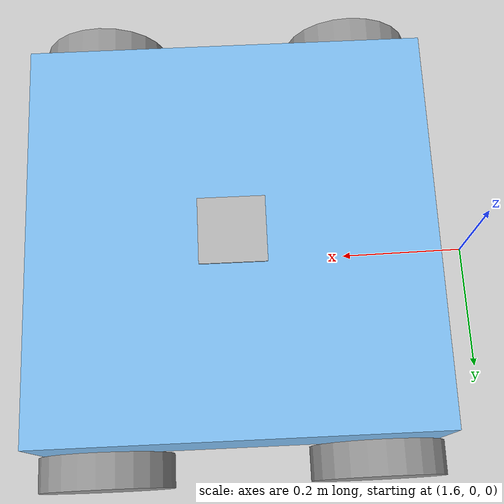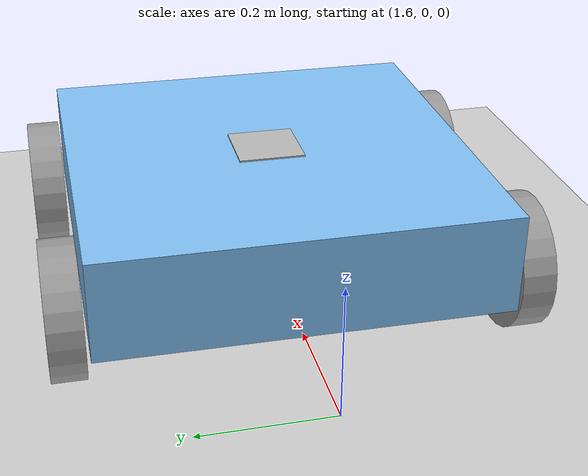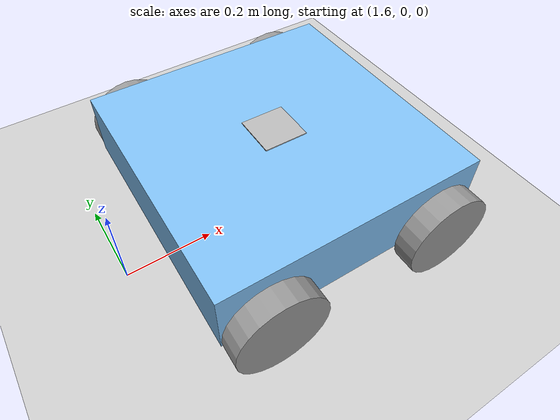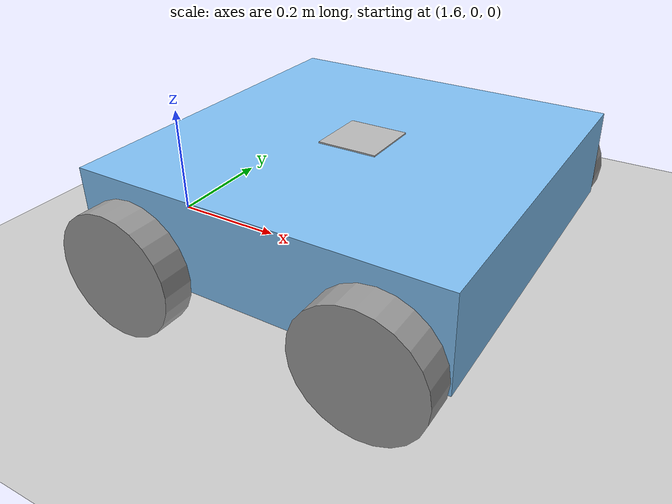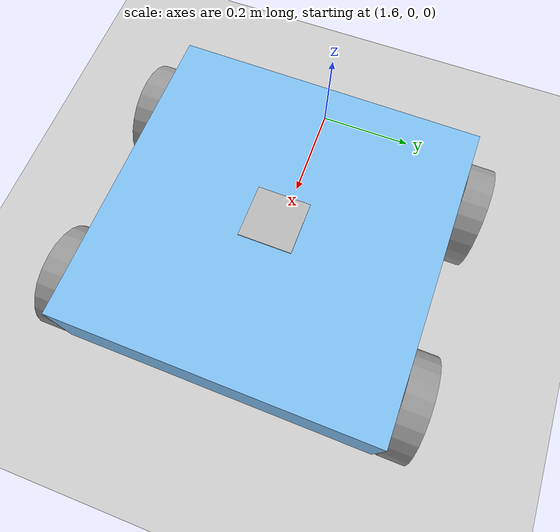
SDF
<sdf version="1.6">
 <world name="default">
  <light name="sun" type="directional">
   <pose>0 0 10 0 -0 0</pose>
   <diffuse>0.8 0.8 0.8 1</diffuse>
   <specular>0.2 0.2 0.2 1</specular>
   <attenuation>
    <range>1000</range>
    <constant>0.9</constant>
    <linear>0.01</linear>
    <quadratic>0.001</quadratic>
   </attenuation>
   <direction>-0.5 0.1 -0.9</direction>
  </light>
  <model name="ground_plane">
   <static>1</static>
   <link name="link">
    <collision name="collision">
     <geometry><plane><normal>0 0 1</normal><size>100 100</size></plane></geometry>
     <surface>
      <contact><collide_bitmask>65535</collide_bitmask></contact>
      <friction><ode><mu>100</mu><mu2>50</mu2></ode></friction>
     </surface>
    </collision>
    <visual name="visual">
     <cast_shadows>0</cast_shadows>
     <geometry><plane><normal>0 0 1</normal><size>100 100</size></plane></geometry>
     <material>
      <script><uri>file://media/materials/scripts/gazebo.material</uri><name>Gazebo/Grey</name></script>
     </material>
    </visual>
   </link>
  </model>
  <gravity>0 0 -9.8</gravity>
  <magnetic_field>6e-06 2.3e-05 -4.2e-05</magnetic_field>
  <atmosphere type="adiabatic"/>
  <physics name="default_physics" default="0" type="ode">
   <max_step_size>0.001</max_step_size>
   <real_time_factor>1</real_time_factor>
   <real_time_update_rate>1000</real_time_update_rate>
  </physics>
  <scene><ambient>0.4 0.4 0.4 1</ambient><background>0.7 0.7 0.7 1</background><shadows>1</shadows></scene>
  <spherical_coordinates>
   <surface_model>EARTH_WGS84</surface_model>
   <latitude_deg>0</latitude_deg>
   <longitude_deg>0</longitude_deg>
   <elevation>0</elevation>
   <heading_deg>0</heading_deg>
  </spherical_coordinates>
  <model name="moving_platform">
   <link name="base_link">
    <inertial>
     <mass>5</mass>
     <inertia><ixx>0.159375</ixx><ixy>0</ixy><ixz>0</ixz><iyy>0.159375</iyy><iyz>0</iyz><izz>0.3</izz></inertia>
    </inertial>
    <pose>-0.06079 0.110542 0.097222 0 -0 0</pose>
    <visual name="visual">
     <geometry><box><size>0.6 0.6 0.15</size></box></geometry>
     <material>
      <lighting>1</lighting>
      <script><uri>file://media/materials/scripts/gazebo.material</uri><name>Gazebo/SkyBlue</name></script>
      <shader type="pixel"><normal_map>__default__</normal_map></shader>
      <ambient>0.3 0.3 0.3 1</ambient>
      <diffuse>0.7 0.7 0.7 1</diffuse>
      <specular>0.01 0.01 0.01 1</specular>
      <emissive>0 0 0 1</emissive>
     </material>
    </visual>
    <collision name="collision">
     <geometry><box><size>0.6 0.6 0.15</size></box></geometry>
     <surface>
      <friction>
       <ode><mu>1</mu><mu2>1</mu2><fdir1>0 0 0</fdir1><slip1>0</slip1><slip2>0</slip2></ode>
       <torsional>
        <coefficient>1</coefficient>
        <patch_radius>0</patch_radius>
        <surface_radius>0</surface_radius>
        <use_patch_radius>1</use_patch_radius>
        <ode><slip>0</slip></ode>
       </torsional>
      </friction>
      <bounce><restitution_coefficient>0</restitution_coefficient><threshold>1e+06</threshold></bounce>
      <contact>
       <collide_without_contact>0</collide_without_contact>
       <collide_without_contact_bitmask>1</collide_without_contact_bitmask>
       <collide_bitmask>1</collide_bitmask>
       <ode>
        <soft_cfm>0</soft_cfm>
        <soft_erp>0.2</soft_erp>
        <kp>1e+13</kp>
        <kd>1</kd>
        <max_vel>0.01</max_vel>
        <min_depth>0</min_depth>
       </ode>
       <bullet>
        <split_impulse>1</split_impulse>
        <split_impulse_penetration_threshold>-0.01</split_impulse_penetration_threshold>
        <soft_cfm>0</soft_cfm>
        <soft_erp>0.2</soft_erp>
        <kp>1e+13</kp>
        <kd>1</kd>
       </bullet>
      </contact>
     </surface>
    </collision>
   </link>
   <link name="left_front_wheel">
    <inertial>
     <mass>0.15</mass>
     <inertia>
      <ixx>0.00040625</ixx>
      <ixy>0</ixy>
      <ixz>0</ixz>
      <iyy>0.00040625</iyy>
      <iyz>0</iyz>
      <izz>0.00075</izz>
     </inertia>
    </inertial>
    <pose>0.13921 0.440542 0.047222 -1.5708 -0 -0</pose>
    <visual name="visual">
     <geometry><cylinder><radius>0.1</radius><length>0.05</length></cylinder></geometry>
     <material>
      <lighting>1</lighting>
      <script><uri>file://media/materials/scripts/gazebo.material</uri><name>Gazebo/Grey</name></script>
      <shader type="pixel"><normal_map>__default__</normal_map></shader>
      <ambient>0.3 0.3 0.3 1</ambient>
      <diffuse>0.7 0.7 0.7 1</diffuse>
      <specular>0.01 0.01 0.01 1</specular>
      <emissive>0 0 0 1</emissive>
     </material>
    </visual>
    <collision name="collision">
     <geometry><cylinder><radius>0.1</radius><length>0.05</length></cylinder></geometry>
     <surface>
      <friction>
       <ode><mu>1</mu><mu2>1</mu2><fdir1>0 0 0</fdir1><slip1>0</slip1><slip2>0</slip2></ode>
       <torsional>
        <coefficient>1</coefficient>
        <patch_radius>0</patch_radius>
        <surface_radius>0</surface_radius>
        <use_patch_radius>1</use_patch_radius>
        <ode><slip>0</slip></ode>
       </torsional>
      </friction>
      <bounce><restitution_coefficient>0</restitution_coefficient><threshold>1e+06</threshold></bounce>
      <contact>
       <collide_without_contact>0</collide_without_contact>
       <collide_without_contact_bitmask>1</collide_without_contact_bitmask>
       <collide_bitmask>1</collide_bitmask>
       <ode>
        <soft_cfm>0</soft_cfm>
        <soft_erp>0.2</soft_erp>
        <kp>1e+13</kp>
        <kd>1</kd>
        <max_vel>0.01</max_vel>
        <min_depth>0</min_depth>
       </ode>
       <bullet>
        <split_impulse>1</split_impulse>
        <split_impulse_penetration_threshold>-0.01</split_impulse_penetration_threshold>
        <soft_cfm>0</soft_cfm>
        <soft_erp>0.2</soft_erp>
        <kp>1e+13</kp>
        <kd>1</kd>
       </bullet>
      </contact>
     </surface>
    </collision>
   </link>
   <link name="left_rear_wheel">
    <inertial>
     <mass>0.15</mass>
     <inertia>
      <ixx>0.00040625</ixx>
      <ixy>0</ixy>
      <ixz>0</ixz>
      <iyy>0.00040625</iyy>
      <iyz>0</iyz>
      <izz>0.00075</izz>
     </inertia>
    </inertial>
    <pose>-0.26079 0.440542 0.047222 -1.5708 -0 -0</pose>
    <visual name="visual">
     <geometry><cylinder><radius>0.1</radius><length>0.05</length></cylinder></geometry>
     <material>
      <lighting>1</lighting>
      <script><uri>file://media/materials/scripts/gazebo.material</uri><name>Gazebo/Grey</name></script>
      <shader type="pixel"><normal_map>__default__</normal_map></shader>
      <ambient>0.3 0.3 0.3 1</ambient>
      <diffuse>0.7 0.7 0.7 1</diffuse>
      <specular>0.01 0.01 0.01 1</specular>
      <emissive>0 0 0 1</emissive>
     </material>
    </visual>
    <collision name="collision">
     <geometry><cylinder><radius>0.1</radius><length>0.05</length></cylinder></geometry>
     <surface>
      <friction>
       <ode><mu>1</mu><mu2>1</mu2><fdir1>0 0 0</fdir1><slip1>0</slip1><slip2>0</slip2></ode>
       <torsional>
        <coefficient>1</coefficient>
        <patch_radius>0</patch_radius>
        <surface_radius>0</surface_radius>
        <use_patch_radius>1</use_patch_radius>
        <ode><slip>0</slip></ode>
       </torsional>
      </friction>
      <bounce><restitution_coefficient>0</restitution_coefficient><threshold>1e+06</threshold></bounce>
      <contact>
       <collide_without_contact>0</collide_without_contact>
       <collide_without_contact_bitmask>1</collide_without_contact_bitmask>
       <collide_bitmask>1</collide_bitmask>
       <ode>
        <soft_cfm>0</soft_cfm>
        <soft_erp>0.2</soft_erp>
        <kp>1e+13</kp>
        <kd>1</kd>
        <max_vel>0.01</max_vel>
        <min_depth>0</min_depth>
       </ode>
       <bullet>
        <split_impulse>1</split_impulse>
        <split_impulse_penetration_threshold>-0.01</split_impulse_penetration_threshold>
        <soft_cfm>0</soft_cfm>
        <soft_erp>0.2</soft_erp>
        <kp>1e+13</kp>
        <kd>1</kd>
       </bullet>
      </contact>
     </surface>
    </collision>
   </link>
   <link name="right_front_wheel">
    <inertial>
     <mass>0.15</mass>
     <inertia>
      <ixx>0.00040625</ixx>
      <ixy>0</ixy>
      <ixz>0</ixz>
      <iyy>0.00040625</iyy>
      <iyz>0</iyz>
      <izz>0.00075</izz>
     </inertia>
    </inertial>
    <pose>0.13921 -0.219458 0.047222 -1.5708 -0.000987 -0</pose>
    <visual name="visual">
     <geometry><cylinder><radius>0.1</radius><length>0.05</length></cylinder></geometry>
     <material>
      <lighting>1</lighting>
      <script><uri>file://media/materials/scripts/gazebo.material</uri><name>Gazebo/Grey</name></script>
      <shader type="pixel"><normal_map>__default__</normal_map></shader>
      <ambient>0.3 0.3 0.3 1</ambient>
      <diffuse>0.7 0.7 0.7 1</diffuse>
      <specular>0.01 0.01 0.01 1</specular>
      <emissive>0 0 0 1</emissive>
     </material>
    </visual>
    <collision name="collision">
     <geometry><cylinder><radius>0.1</radius><length>0.05</length></cylinder></geometry>
     <surface>
      <friction>
       <ode><mu>1</mu><mu2>1</mu2><fdir1>0 0 0</fdir1><slip1>0</slip1><slip2>0</slip2></ode>
       <torsional>
        <coefficient>1</coefficient>
        <patch_radius>0</patch_radius>
        <surface_radius>0</surface_radius>
        <use_patch_radius>1</use_patch_radius>
        <ode><slip>0</slip></ode>
       </torsional>
      </friction>
      <bounce><restitution_coefficient>0</restitution_coefficient><threshold>1e+06</threshold></bounce>
      <contact>
       <collide_without_contact>0</collide_without_contact>
       <collide_without_contact_bitmask>1</collide_without_contact_bitmask>
       <collide_bitmask>1</collide_bitmask>
       <ode>
        <soft_cfm>0</soft_cfm>
        <soft_erp>0.2</soft_erp>
        <kp>1e+13</kp>
        <kd>1</kd>
        <max_vel>0.01</max_vel>
        <min_depth>0</min_depth>
       </ode>
       <bullet>
        <split_impulse>1</split_impulse>
        <split_impulse_penetration_threshold>-0.01</split_impulse_penetration_threshold>
        <soft_cfm>0</soft_cfm>
        <soft_erp>0.2</soft_erp>
        <kp>1e+13</kp>
        <kd>1</kd>
       </bullet>
      </contact>
     </surface>
    </collision>
   </link>
   <link name="right_rear_wheel">
    <inertial>
     <mass>0.15</mass>
     <inertia>
      <ixx>0.00040625</ixx>
      <ixy>0</ixy>
      <ixz>0</ixz>
      <iyy>0.00040625</iyy>
      <iyz>0</iyz>
      <izz>0.00075</izz>
     </inertia>
    </inertial>
    <pose>-0.26079 -0.219458 0.047222 -1.5708 -0 -0</pose>
    <visual name="visual">
     <geometry><cylinder><radius>0.1</radius><length>0.05</length></cylinder></geometry>
     <material>
      <lighting>1</lighting>
      <script><uri>file://media/materials/scripts/gazebo.material</uri><name>Gazebo/Grey</name></script>
      <shader type="pixel"><normal_map>__default__</normal_map></shader>
      <ambient>0.3 0.3 0.3 1</ambient>
      <diffuse>0.7 0.7 0.7 1</diffuse>
      <specular>0.01 0.01 0.01 1</specular>
      <emissive>0 0 0 1</emissive>
     </material>
    </visual>
    <collision name="collision">
     <geometry><cylinder><radius>0.1</radius><length>0.05</length></cylinder></geometry>
     <surface>
      <friction>
       <ode><mu>1</mu><mu2>1</mu2><fdir1>0 0 0</fdir1><slip1>0</slip1><slip2>0</slip2></ode>
       <torsional>
        <coefficient>1</coefficient>
        <patch_radius>0</patch_radius>
        <surface_radius>0</surface_radius>
        <use_patch_radius>1</use_patch_radius>
        <ode><slip>0</slip></ode>
       </torsional>
      </friction>
      <bounce><restitution_coefficient>0</restitution_coefficient><threshold>1e+06</threshold></bounce>
      <contact>
       <collide_without_contact>0</collide_without_contact>
       <collide_without_contact_bitmask>1</collide_without_contact_bitmask>
       <collide_bitmask>1</collide_bitmask>
       <ode>
        <soft_cfm>0</soft_cfm>
        <soft_erp>0.2</soft_erp>
        <kp>1e+13</kp>
        <kd>1</kd>
        <max_vel>0.01</max_vel>
        <min_depth>0</min_depth>
       </ode>
       <bullet>
        <split_impulse>1</split_impulse>
        <split_impulse_penetration_threshold>-0.01</split_impulse_penetration_threshold>
        <soft_cfm>0</soft_cfm>
        <soft_erp>0.2</soft_erp>
        <kp>1e+13</kp>
        <kd>1</kd>
       </bullet>
      </contact>
     </surface>
    </collision>
   </link>
   <model name="camera_0">
    <pose>-0.060656 0.110538 0.124572 8e-06 -1.56986 -8e-06</pose>
    <link name="link">
     <inertial>
      <mass>0.01</mass>
      <inertia>
       <ixx>1.66667e-05</ixx>
       <iyy>1.66667e-05</iyy>
       <izz>1.66667e-05</izz>
       <ixy>0</ixy>
       <ixz>0</ixz>
       <iyz>0</iyz>
      </inertia>
     </inertial>
     <collision name="collision"><geometry><box><size>0.1 0.1 0.1</size></box></geometry></collision>
     <visual name="visual"><geometry><box><size>0.1 0.1 0.1</size></box></geometry></visual>
     <sensor name="camera" type="camera">
      <camera name="__default__">
       <horizontal_fov>1.047</horizontal_fov>
       <image><width>640</width><height>480</height></image>
       <clip><near>0.1</near><far>100</far></clip>
      </camera>
      <always_on>1</always_on>
      <update_rate>30</update_rate>
      <visualize>1</visualize>
      <plugin name="camera_plugin" filename="libgazebo_ros_camera.so">
       <robotNamespace>/moving_platform/sensor</robotNamespace>
       <alwaysOn>1</alwaysOn>
       <imageTopicName>image_raw</imageTopicName>
       <cameraInfoTopicName>camera_info</cameraInfoTopicName>
       <updateRate>30.0</updateRate>
       <cameraName>camera_lookup</cameraName>
       <frameName>/camera_0::link</frameName>
       <hackBaseline>0</hackBaseline>
       <distortionK1>0.0</distortionK1>
       <distortionK2>0.0</distortionK2>
       <distortionK3>0.0</distortionK3>
       <distortionT1>0.0</distortionT1>
       <distortionT2>0.0</distortionT2>
      </plugin>
     </sensor>
    </link>
   </model>
   <joint name="camera_joint" type="fixed">
    <parent>base_link</parent>
    <child>camera_0::link</child>
    <physics>
     <ode><limit><cfm>0</cfm><erp>0.2</erp></limit><suspension><cfm>0</cfm><erp>0.2</erp></suspension></ode>
    </physics>
   </joint>
   <joint name="left_front_wheel_joint" type="revolute">
    <parent>base_link</parent>
    <child>left_front_wheel</child>
    <axis>
     <xyz>0 0 1</xyz>
     <use_parent_model_frame>0</use_parent_model_frame>
     <limit>
      <lower>-1.79769e+308</lower>
      <upper>1.79769e+308</upper>
      <effort>-1</effort>
      <velocity>-1</velocity>
     </limit>
     <dynamics>
      <spring_reference>0</spring_reference>
      <spring_stiffness>0</spring_stiffness>
      <damping>0</damping>
      <friction>0</friction>
     </dynamics>
    </axis>
    <physics>
     <ode><limit><cfm>0</cfm><erp>0.2</erp></limit><suspension><cfm>0</cfm><erp>0.2</erp></suspension></ode>
    </physics>
   </joint>
   <joint name="left_rear_wheel_joint" type="revolute">
    <parent>base_link</parent>
    <child>left_rear_wheel</child>
    <axis>
     <xyz>0 0 1</xyz>
     <use_parent_model_frame>0</use_parent_model_frame>
     <limit>
      <lower>-1.79769e+308</lower>
      <upper>1.79769e+308</upper>
      <effort>-1</effort>
      <velocity>-1</velocity>
     </limit>
     <dynamics>
      <spring_reference>0</spring_reference>
      <spring_stiffness>0</spring_stiffness>
      <damping>0</damping>
      <friction>0</friction>
     </dynamics>
    </axis>
    <physics>
     <ode><limit><cfm>0</cfm><erp>0.2</erp></limit><suspension><cfm>0</cfm><erp>0.2</erp></suspension></ode>
    </physics>
   </joint>
   <joint name="right_front_wheel_joint" type="revolute">
    <parent>base_link</parent>
    <child>right_front_wheel</child>
    <axis>
     <xyz>0 0 1</xyz>
     <use_parent_model_frame>0</use_parent_model_frame>
     <limit>
      <lower>-1.79769e+308</lower>
      <upper>1.79769e+308</upper>
      <effort>-1</effort>
      <velocity>-1</velocity>
     </limit>
     <dynamics>
      <spring_reference>0</spring_reference>
      <spring_stiffness>0</spring_stiffness>
      <damping>0</damping>
      <friction>0</friction>
     </dynamics>
    </axis>
    <physics>
     <ode><limit><cfm>0</cfm><erp>0.2</erp></limit><suspension><cfm>0</cfm><erp>0.2</erp></suspension></ode>
    </physics>
   </joint>
   <joint name="right_rear_wheel_joint" type="revolute">
    <parent>base_link</parent>
    <child>right_rear_wheel</child>
    <axis>
     <xyz>0 0 1</xyz>
     <use_parent_model_frame>0</use_parent_model_frame>
     <limit>
      <lower>-1.79769e+308</lower>
      <upper>1.79769e+308</upper>
      <effort>-1</effort>
      <velocity>-1</velocity>
     </limit>
     <dynamics>
      <spring_reference>0</spring_reference>
      <spring_stiffness>0</spring_stiffness>
      <damping>0</damping>
      <friction>0</friction>
     </dynamics>
    </axis>
    <physics>
     <ode><limit><cfm>0</cfm><erp>0.2</erp></limit><suspension><cfm>0</cfm><erp>0.2</erp></suspension></ode>
    </physics>
   </joint>
   <static>0</static>
   <pose>2.04349 -0.09701 0.052771 0 2.7e-05 -0.013278</pose>
  </model>
 </world>
</sdf>
